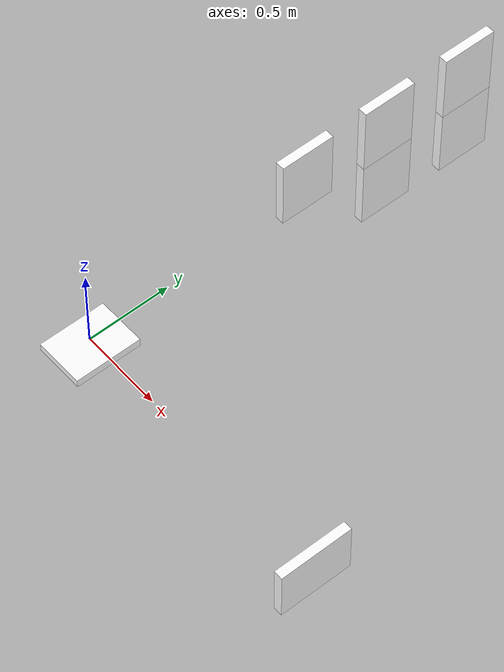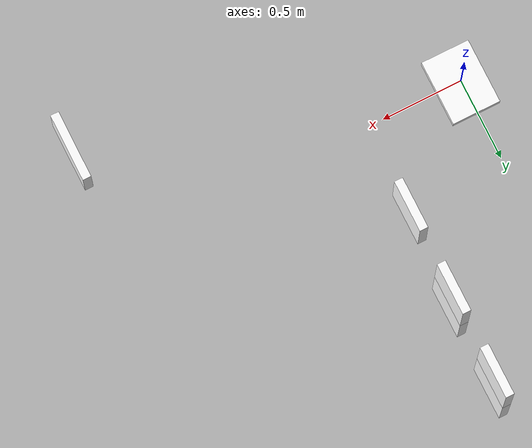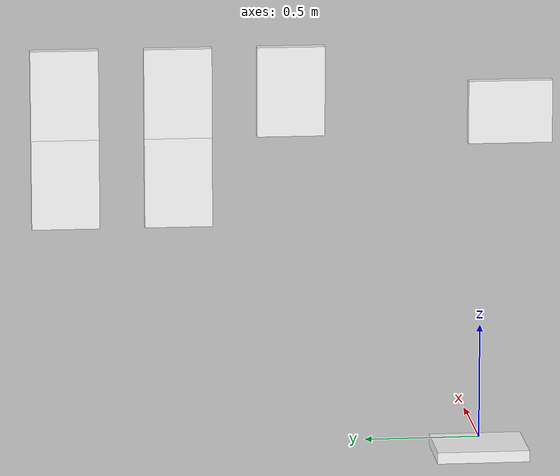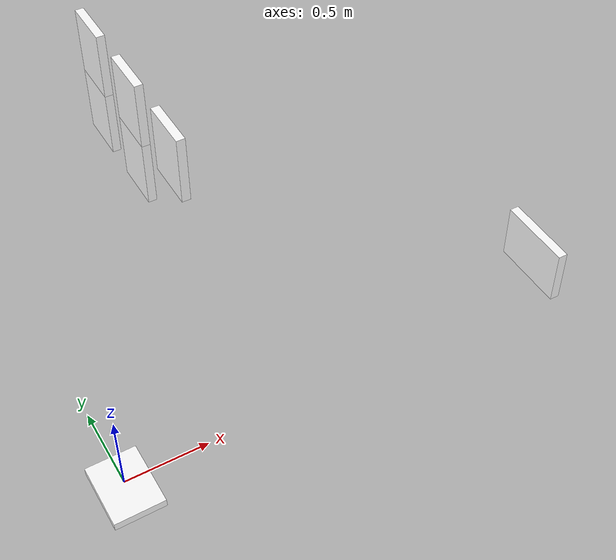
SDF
<sdf version="1.7">
 <world name="default">
  <light name="sun" type="directional">
   <pose>0 0 10 0 -0 0</pose>
   <diffuse>0.8 0.8 0.8 1</diffuse>
   <specular>0.2 0.2 0.2 1</specular>
   <attenuation>
    <range>1000</range>
    <constant>0.9</constant>
    <linear>0.01</linear>
    <quadratic>0.001</quadratic>
   </attenuation>
   <direction>-0.5 0.1 -0.9</direction>
   <spot><inner_angle>0</inner_angle><outer_angle>0</outer_angle><falloff>0</falloff></spot>
  </light>
  <gravity>0 0 -9.8</gravity>
  <magnetic_field>6e-06 2.3e-05 -4.2e-05</magnetic_field>
  <atmosphere type="adiabatic"/>
  <physics type="ode">
   <max_step_size>0.001</max_step_size>
   <real_time_factor>1</real_time_factor>
   <real_time_update_rate>1000</real_time_update_rate>
  </physics>
  <scene><ambient>0.4 0.4 0.4 1</ambient><background>0.7 0.7 0.7 1</background><shadows>1</shadows></scene>
  <spherical_coordinates>
   <surface_model>EARTH_WGS84</surface_model>
   <latitude_deg>0</latitude_deg>
   <longitude_deg>0</longitude_deg>
   <elevation>0</elevation>
   <heading_deg>0</heading_deg>
  </spherical_coordinates>
  <model name="Model1_1">
   <pose>2.20616 -0.436735 1 1.5708 -0 0</pose>
   <link name="Link1">
    <collision name="Collision1"><geometry><box><size>0.3 0.05 0.3</size></box></geometry></collision>
    <visual name="Visual1">
     <geometry><box><size>0.05 0.3 0.4</size></box></geometry>
     <material>
      <script>
       <uri>model://Untitled1/materials/scripts</uri>
       <uri>model://Untitled1/materials/textures</uri>
       <name>tag1</name>
      </script>
      <ambient>1 1 1 1</ambient>
     </material>
    </visual>
   </link>
   <static>1</static>
  </model>
  <model name="Model2">
   <pose>0.75 0.75 1.4 0 -0 0</pose>
   <link name="Link1">
    <collision name="Collision1"><geometry><box><size>0.3 0.05 0.3</size></box></geometry></collision>
    <visual name="Visual1">
     <geometry><box><size>0.05 0.3 0.4</size></box></geometry>
     <material>
      <script>
       <uri>model://Untitled1/materials/scripts</uri>
       <uri>model://Untitled1/materials/textures</uri>
       <name>tag2</name>
      </script>
      <ambient>1 1 1 1</ambient>
     </material>
    </visual>
   </link>
   <static>1</static>
  </model>
  <model name="Model3">
   <pose>0.75 1.25 1.4 0 -0 0</pose>
   <link name="Link1">
    <collision name="Collision1"><geometry><box><size>0.3 0.05 0.3</size></box></geometry></collision>
    <visual name="Visual1">
     <geometry><box><size>0.05 0.3 0.4</size></box></geometry>
     <material>
      <script>
       <uri>model://Untitled1/materials/scripts</uri>
       <uri>model://Untitled1/materials/textures</uri>
       <name>tag3</name>
      </script>
      <ambient>1 1 1 1</ambient>
     </material>
    </visual>
   </link>
   <static>1</static>
  </model>
  <model name="Model4">
   <pose>0.75 1.25 1 0 -0 0</pose>
   <link name="Link1">
    <collision name="Collision1"><geometry><box><size>0.3 0.05 0.3</size></box></geometry></collision>
    <visual name="Visual1">
     <geometry><box><size>0.05 0.3 0.4</size></box></geometry>
     <material>
      <script>
       <uri>model://Untitled1/materials/scripts</uri>
       <uri>model://Untitled1/materials/textures</uri>
       <name>tag4</name>
      </script>
      <ambient>1 1 1 1</ambient>
     </material>
    </visual>
   </link>
   <static>1</static>
  </model>
  <model name="Model5">
   <pose>0.75 1.75 1 0 -0 0</pose>
   <link name="Link1">
    <collision name="Collision1"><geometry><box><size>0.3 0.05 0.3</size></box></geometry></collision>
    <visual name="Visual1">
     <geometry><box><size>0.05 0.3 0.4</size></box></geometry>
     <material>
      <script>
       <uri>model://Untitled1/materials/scripts</uri>
       <uri>model://Untitled1/materials/textures</uri>
       <name>tag5</name>
      </script>
      <ambient>1 1 1 1</ambient>
     </material>
    </visual>
   </link>
   <static>1</static>
  </model>
  <model name="Model6">
   <pose>0.75 1.75 1.4 0 -0 0</pose>
   <link name="Link1">
    <collision name="Collision1"><geometry><box><size>0.3 0.05 0.3</size></box></geometry></collision>
    <visual name="Visual1">
     <geometry><box><size>0.05 0.3 0.4</size></box></geometry>
     <material>
      <script>
       <uri>model://Untitled1/materials/scripts</uri>
       <uri>model://Untitled1/materials/textures</uri>
       <name>tag6</name>
      </script>
      <ambient>1 1 1 1</ambient>
     </material>
    </visual>
   </link>
   <static>1</static>
  </model>
  <model name="Model0">
   <pose>0.001138 0 -0.05 1.571 1.55105 0.000203</pose>
   <link name="Link1">
    <collision name="Collision1"><geometry><box><size>0.3 0 0.3</size></box></geometry></collision>
    <visual name="Visual1">
     <geometry><box><size>0.05 0.3 0.4</size></box></geometry>
     <material>
      <script>
       <uri>model://Untitled1/materials/scripts</uri>
       <uri>model://Untitled1/materials/textures</uri>
       <name>tag0</name>
      </script>
      <ambient>1 1 1 1</ambient>
     </material>
    </visual>
   </link>
   <static>1</static>
  </model>
 </world>
</sdf>
